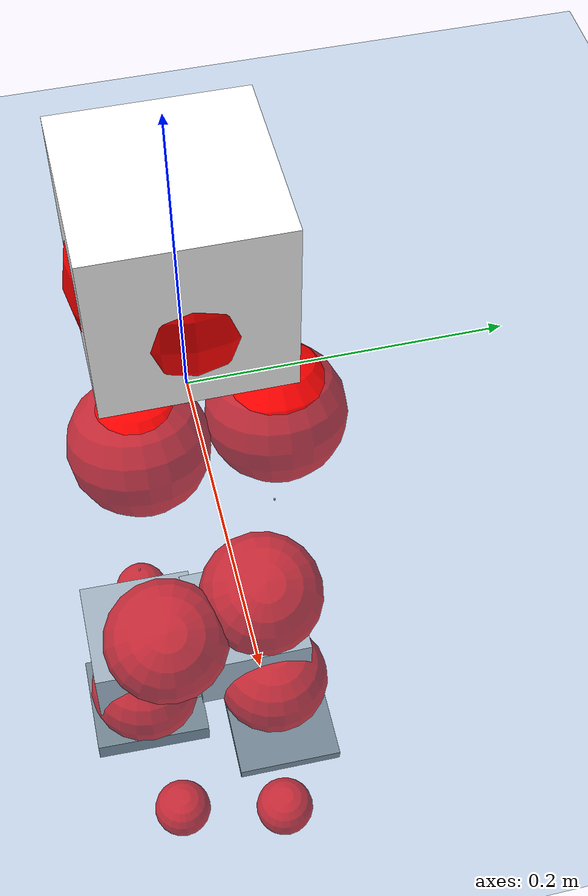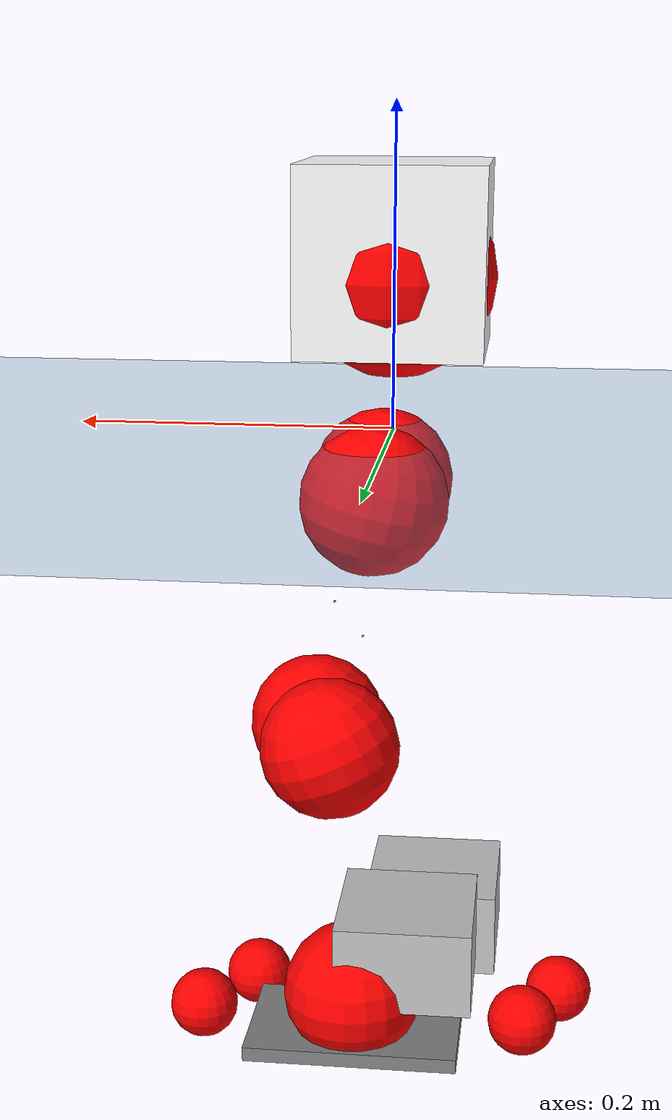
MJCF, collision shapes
<mujoco model="pi_12dof_release_v1">
  <compiler angle="radian" assetdir="assets" balanceinertia="true" inertiafromgeom="false"/>

  <option timestep="0.005" density="1.2" viscosity="2e-05"/>

  <size nkey="1"/>

  <visual>
    <quality shadowsize="8192"/>
    <map shadowclip="0.5"/>
  </visual>

  <default>
    <default class="/">
      <joint armature="0.01" damping="0.01" frictionloss="0.01"/>
      <geom contype="0" conaffinity="0" group="1" solref="-1000 -80"/>
      <site size="0.01 0.005 0.005" group="5"/>
      <general forcelimited="true" biastype="affine" gainprm="20" biasprm="0 -20 -0.5"/>
      <default class="foot">
        <geom size="0.0845 0.036 0.005" type="box" condim="6" group="4" priority="1" friction="0.9 0.2 0.2" solimp="0.015 1 0.005"/>
      </default>
      <default class="reward_collision_sphere">
        <geom group="5" rgba="1 0 0 1"/>
      </default>
    </default>
  </default>

  <asset>
    <texture type="skybox" colorspace="auto" name="//unnamed_texture_0" builtin="gradient" rgb1="0.95 0.95 0.95" rgb2="0.95 0.95 0.95" width="100" height="600"/>
    <texture type="2d" colorspace="auto" name="texplane" builtin="checker" rgb1="0.345 0.575 0.748" rgb2="0.345 0.575 0.748" markrgb="1 1 1" width="512" height="512"/>
    <material name="MatPlane" class="/" texture="texplane" texuniform="true" texrepeat="2 2" specular="0.9"/>
    <mesh name="baselink_1" class="/" file="baselink_1.STL"/>
    <mesh name="r_hip_pitch_link" class="/" file="r_hip_pitch_link.STL"/>
    <mesh name="r_hip_roll_link" class="/" file="r_hip_roll_link.STL"/>
    <mesh name="r_thigh_link" class="/" file="r_thigh_link.STL"/>
    <mesh name="r_calf_link" class="/" file="r_calf_link.STL"/>
    <mesh name="r_ankle_pitch_link" class="/" file="r_ankle_pitch_link.STL"/>
    <mesh name="r_ankle_roll_link" class="/" file="r_ankle_roll_link.STL"/>
    <mesh name="l_hip_pitch_link" class="/" file="l_hip_pitch_link.STL"/>
    <mesh name="l_hip_roll_link" class="/" file="l_hip_roll_link.STL"/>
    <mesh name="l_thigh_link" class="/" file="l_thigh_link.STL"/>
    <mesh name="l_calf_link" class="/" file="l_calf_link.STL"/>
    <mesh name="l_ankle_pitch_link" class="/" file="l_ankle_pitch_link.STL"/>
    <mesh name="l_ankle_roll_link" class="/" file="l_ankle_roll_link.STL"/>
  </asset>

  <worldbody>
    <geom name="floor" class="/" size="100 100 0.125" type="plane" group="0" material="MatPlane"/>
    <light name="toplight_shadow" class="/" pos="0 0 5" dir="0.0990148 0.0990148 -0.990148" type="directional" ambient="0.04 0.04 0.04" diffuse="0.55 0.55 0.55" specular="0.12 0.12 0.12"/>
    <light name="toplight_fill" class="/" pos="0 0 5" dir="0.0990148 0.0990148 -0.990148" type="directional" castshadow="false" ambient="0.04 0.04 0.04" diffuse="0.3 0.3 0.3" specular="0.08 0.08 0.08"/>
    <body name="trunk" pos="3.67869e-05 -0.000664472 0.0139636" quat="0.999998 -0.00140169 -0.00137339 0.000406973">
      <inertial pos="-0.00105244 -0.017851 0.0319848" quat="0.693125 0.00832402 0.0101504 0.720698" mass="3.29899" diaginertia="0.0906644 0.0011919 0.0107115"/>
      <joint name="//unnamed_joint_0" type="free"/>
      <geom name="//unnamed_geom_1" class="/" type="mesh" density="0" rgba="1 1 1 1" mesh="baselink_1"/>
      <geom name="//unnamed_geom_2" class="/" size="0.0569391 0.0569391 0.0569391" pos="0 0 0.093203" type="box" rgba="1 1 1 1"/>
      <geom name="//unnamed_geom_3" class="reward_collision_sphere" size="0.062633" pos="0 0 0.0815526"/>
      <site name="imu" class="/" pos="-0.0469399 0.0596779 -0.0488192" size="0.0113878"/>
      <camera name="track" class="/" pos="0 -1.31782 0" quat="0.707107 0.707107 0 0" mode="trackcom"/>
      <camera name="ego_camera" class="/" pos="0.11943 0 0.209707" quat="-0.5 -0.5 0.5 0.5"/>
      <body name="r_hip_pitch_link" pos="0.00426923 -0.00248855 -0.0436892" quat="0.992504 0.00163956 -0.12217 -0.00278299">
        <inertial pos="0.0176076 -0.0323209 0.0113195" quat="-0.0207639 0.683162 -0.0272569 0.729462" mass="0.667604" diaginertia="0.00121778 1.54702e-05 0.000167435"/>
        <joint name="r_hip_pitch_joint" class="/" pos="0 0 0" axis="-0.0640311 -0.99609 0.0608723" range="-1.61013 1.52002" armature="0.0182042" damping="0.0670924" frictionloss="0.0196579"/>
        <geom name="//unnamed_geom_4" class="/" type="mesh" density="0" rgba="0.75294 0.75294 0.75294 1" mesh="r_hip_pitch_link"/>
        <geom name="//unnamed_geom_5" class="/" size="0.000569391 0.000569391 0.000569391" type="box" rgba="0.75294 0.75294 0.75294 1"/>
        <body name="r_hip_roll_link" pos="0.00254284 -0.0314726 -0.0105502" quat="1 0.000228176 -0.000741778 5.04318e-06">
          <inertial pos="0.00136003 0.00304666 -0.0590582" quat="0.700205 -0.059816 -0.0832697 0.706542" mass="0.623347" diaginertia="0.00322815 3.39289e-05 0.000409972"/>
          <joint name="r_hip_roll_joint" class="/" pos="0 0 0" axis="-0.997357 0.0535493 0.0491109" stiffness="0.0512744" range="-0.114034 0.600212" armature="0.0150766" damping="0.0984803" frictionloss="0.0044599"/>
          <geom name="//unnamed_geom_6" class="/" type="mesh" density="0" rgba="0.75294 0.75294 0.75294 1" mesh="r_hip_roll_link"/>
          <geom name="//unnamed_geom_7" class="/" size="0.000569391 0.000569391 0.000569391" type="box" rgba="0.75294 0.75294 0.75294 1"/>
          <geom name="//unnamed_geom_8" class="reward_collision_sphere" size="0.0455512"/>
          <body name="r_thigh_link" pos="0.0101553 -0.0137797 -0.0953521" quat="0.999963 -0.00408999 0.0072625 -0.00225272">
            <inertial pos="0.004926 0.00118254 -0.0531463" quat="0.737307 0.675558 -4.97562e-05 -4.87982e-05" mass="0.220088" diaginertia="0.00123277 1.1975e-05 0.000137701"/>
            <joint name="r_thigh_joint" class="/" pos="0 0 0" axis="-0.0016185 -0.00175326 -0.999997" range="-0.34329 0.869755" armature="0.00261369" damping="0" frictionloss="0.00946486"/>
            <geom name="//unnamed_geom_9" class="/" type="mesh" density="0" rgba="0.75294 0.75294 0.75294 1" mesh="r_thigh_link"/>
            <geom name="//unnamed_geom_10" class="/" size="0.000569391 0.000569391 0.000569391" type="box" rgba="0.75294 0.75294 0.75294 1"/>
            <body name="r_calf_link" pos="-0.00921711 0.0106179 -0.0828231" quat="0.947775 -0.00633534 0.318848 -0.00437883">
              <inertial pos="0.00233268 -0.00708683 -0.0745068" quat="0.99985 0.00299779 -0.000373286 0.0170523" mass="1.29302" diaginertia="0.0462838 0.00059967 0.000357557"/>
              <joint name="r_calf_joint" class="/" pos="0 0 0" axis="0.0186053 -0.995412 -0.0938562" range="-1.43955 0.608592" armature="0.0112065" damping="0.0153704" frictionloss="0.0162498"/>
              <geom name="//unnamed_geom_11" class="/" type="mesh" density="0" rgba="0.75294 0.75294 0.75294 1" mesh="r_calf_link"/>
              <geom name="//unnamed_geom_12" class="/" size="0.000569391 0.000569391 0.000569391" type="box" rgba="0.75294 0.75294 0.75294 1"/>
              <geom name="//unnamed_geom_13" class="reward_collision_sphere" size="0.0455512"/>
              <body name="r_ankle_pitch_link" pos="-0.0185991 -0.0120897 -0.160564" quat="0.979735 -0.00337732 -0.200259 0.00212724">
                <inertial pos="0.00372597 0.00847171 -0.000609063" quat="-0.00235314 0.698826 0.00135812 0.715287" mass="0.226327" diaginertia="0.00292294 2.37891e-05 0.000178707"/>
                <joint name="r_ankle_pitch_joint" class="/" pos="0 0 0" axis="0.0525447 -0.998466 0.0174777" stiffness="0.0520216" range="-1.03631 0.29023" armature="0.0108946" damping="0" frictionloss="0.00233341"/>
                <geom name="//unnamed_geom_14" class="/" type="mesh" density="0" rgba="0.75294 0.75294 0.75294 1" mesh="r_ankle_pitch_link"/>
                <geom name="//unnamed_geom_15" class="/" size="0.0444125 0.0455512 0.0284695" type="box" rgba="0.75294 0.75294 0.75294 1"/>
                <body name="r_ankle_roll_link" pos="0.102263 -0.00557733 -0.0115393" quat="0.999994 -0.00198805 3.10382e-05 -0.00292506">
                  <inertial pos="-0.0280203 0.00784931 -0.0352743" quat="0.56898 0.455607 0.438879 0.525423" mass="0.9229" diaginertia="0.0094804 0.000130025 0.000616806"/>
                  <joint name="r_ankle_roll_joint" class="/" pos="0 0 0" axis="-0.999864 -0.0162704 0.00260939" range="-0.270081 0.28789" armature="0.0111394" damping="0.00280051" frictionloss="0.00065888"/>
                  <geom name="//unnamed_geom_16" class="/" type="mesh" density="0" rgba="0.75294 0.75294 0.75294 1" mesh="r_ankle_roll_link"/>
                  <geom name="//unnamed_geom_17" class="/" type="mesh" rgba="0.75294 0.75294 0.75294 1" mesh="r_ankle_roll_link"/>
                  <geom name="right_foot" class="foot" size="0.0410291 0.0469685 0.00921949" pos="-0.0812123 0 -0.0512616"/>
                  <geom name="//unnamed_geom_19" class="reward_collision_sphere" size="0.0455512" pos="-0.0796199 0 -0.0233007"/>
                  <geom name="//unnamed_geom_20" class="reward_collision_sphere" size="0.0227756" pos="0.023886 0.0131782 -0.0466015"/>
                  <geom name="//unnamed_geom_21" class="reward_collision_sphere" size="0.0227756" pos="-0.191088 0.0131782 -0.0466015"/>
                  <site name="right_foot" class="foot" pos="-0.0812123 0 -0.0512616" size="0.0113878"/>
                </body>
              </body>
            </body>
          </body>
        </body>
      </body>
      <body name="l_hip_pitch_link" pos="0.0074979 0.00115457 -0.04363" quat="0.992439 -0.000310651 -0.122723 -0.002114">
        <inertial pos="0.01266 0.0517247 -0.00706004" quat="0.0498213 0.71879 0.0680887 0.690089" mass="0.710014" diaginertia="0.00115259 1.08144e-05 0.000243135"/>
        <joint name="l_hip_pitch_joint" class="/" pos="0 0 0" axis="0.00992293 0.999917 0.00818205" stiffness="0.000628349" range="-1.5472 2.09332" armature="0.00358709" damping="0" frictionloss="0.0203127"/>
        <geom name="//unnamed_geom_22" class="/" type="mesh" density="0" rgba="0.75294 0.75294 0.75294 1" mesh="l_hip_pitch_link"/>
        <geom name="//unnamed_geom_23" class="/" size="0.000569391 0.000569391 0.000569391" type="box" rgba="0.75294 0.75294 0.75294 1"/>
        <body name="l_hip_roll_link" pos="-0.00202231 0.0534839 -0.00383976" quat="0.999983 0.00373954 0.00357007 0.00274818">
          <inertial pos="0.00600966 0.0139871 -0.0709045" quat="0.705296 -0.110661 -0.044468 0.69881" mass="0.534966" diaginertia="0.00290048 3.10314e-05 0.000185586"/>
          <joint name="l_hip_roll_joint" class="/" pos="0 0 0" axis="-0.998543 -0.0518644 0.0148715" stiffness="0.0425408" range="-0.88249 0.464254" armature="0.00608445" damping="0.01224" frictionloss="0.00825513"/>
          <geom name="//unnamed_geom_24" class="/" type="mesh" density="0" rgba="0.75294 0.75294 0.75294 1" mesh="l_hip_roll_link"/>
          <geom name="//unnamed_geom_25" class="/" size="0.000569391 0.000569391 0.000569391" type="box" rgba="0.75294 0.75294 0.75294 1"/>
          <geom name="//unnamed_geom_26" class="reward_collision_sphere" size="0.0455512"/>
          <body name="l_thigh_link" pos="-0.0145604 -0.00313873 -0.0858202" quat="0.99997 -0.00495495 0.0033437 0.0049508">
            <inertial pos="-0.0148366 0.00849523 -0.0418605" quat="0.675412 0.737439 -0.000138527 0.00188439" mass="0.151168" diaginertia="0.00107078 6.96834e-06 7.05303e-05"/>
            <joint name="l_thigh_joint" class="/" pos="0 0 0" axis="-0.00899705 -0.0397776 -0.999168" range="-0.769054 0.61305" armature="0.017951" damping="0" frictionloss="0.0193631"/>
            <geom name="//unnamed_geom_27" class="/" type="mesh" density="0" rgba="0.75294 0.75294 0.75294 1" mesh="l_thigh_link"/>
            <geom name="//unnamed_geom_28" class="/" size="0.000569391 0.000569391 0.000569391" type="box" rgba="0.75294 0.75294 0.75294 1"/>
            <body name="l_calf_link" pos="0.00270738 -0.0150001 -0.0849512" quat="0.949443 0.00254761 0.313885 -0.00518304">
              <inertial pos="-0.00711464 -0.00871093 -0.0705507" quat="0.995707 -0.0782233 0.049427 0.00238247" mass="1.54618" diaginertia="0.03528 0.00057793 0.000445326"/>
              <joint name="l_calf_joint" class="/" pos="0 0 0" axis="0.00448518 0.999865 0.0157843" range="-0.804559 1.87502" armature="0.0136119" damping="0" frictionloss="0.0188071"/>
              <geom name="//unnamed_geom_29" class="/" type="mesh" density="0" rgba="0.75294 0.75294 0.75294 1" mesh="l_calf_link"/>
              <geom name="//unnamed_geom_30" class="/" size="0.000569391 0.000569391 0.000569391" type="box" rgba="0.75294 0.75294 0.75294 1"/>
              <geom name="//unnamed_geom_31" class="reward_collision_sphere" size="0.0455512"/>
              <body name="l_ankle_pitch_link" pos="0.00616224 -0.00359551 -0.145255" quat="0.980532 -0.00165134 -0.196351 -0.000398254">
                <inertial pos="0.00809827 -0.0199112 -0.0121744" quat="0.0580019 0.674164 -0.00529129 0.736281" mass="0.331376" diaginertia="0.00413962 3.5786e-05 0.000340976"/>
                <joint name="l_ankle_pitch_joint" class="/" pos="0 0 0" axis="0.00454221 0.99616 0.0874367" stiffness="0.0122226" range="-0.473587 1.2494" armature="0.00933382" damping="0.0759445" frictionloss="0.0157909"/>
                <geom name="//unnamed_geom_32" class="/" type="mesh" density="0" rgba="0.75294 0.75294 0.75294 1" mesh="l_ankle_pitch_link"/>
                <geom name="//unnamed_geom_33" class="/" size="0.0444125 0.0455512 0.0284695" type="box" rgba="0.75294 0.75294 0.75294 1"/>
                <body name="l_ankle_roll_link" pos="0.114376 0.0149177 -0.00666857" quat="0.999975 0.00184416 0.00330521 -0.00605026">
                  <inertial pos="-0.049264 0.00339164 -0.0144908" quat="0.591207 0.411726 0.358868 0.593439" mass="1.06016" diaginertia="0.0120643 0.000162459 0.000525984"/>
                  <joint name="l_ankle_roll_joint" class="/" pos="0 0 0" axis="-0.995361 0.0717899 -0.0640533" stiffness="0.0473446" range="-0.118006 0.546157" armature="0.0109476" damping="0" frictionloss="0.0222857"/>
                  <geom name="//unnamed_geom_34" class="/" type="mesh" density="0" rgba="0.75294 0.75294 0.75294 1" mesh="l_ankle_roll_link"/>
                  <geom name="//unnamed_geom_35" class="/" type="mesh" rgba="0.75294 0.75294 0.75294 1" mesh="l_ankle_roll_link"/>
                  <geom name="left_foot" class="foot" size="0.0692766 0.0416521 0.00474443" pos="-0.0812123 0 -0.0512616"/>
                  <geom name="//unnamed_geom_37" class="reward_collision_sphere" size="0.0455512" pos="-0.0796199 0 -0.0233007"/>
                  <geom name="//unnamed_geom_38" class="reward_collision_sphere" size="0.0227756" pos="0.023886 -0.0131782 -0.0466015"/>
                  <geom name="//unnamed_geom_39" class="reward_collision_sphere" size="0.0227756" pos="-0.191088 -0.0131782 -0.0466015"/>
                  <site name="left_foot" class="foot" pos="-0.0812123 0 -0.0512616" size="0.0113878"/>
                </body>
              </body>
            </body>
          </body>
        </body>
      </body>
    </body>
  </worldbody>

  <contact>
    <pair class="/" geom1="floor" geom2="right_foot" name="//unnamed_contact_1"/>
    <pair class="/" geom1="floor" geom2="left_foot" name="//unnamed_contact_0"/>
  </contact>

  <actuator>
    <general name="r_hip_pitch_joint" class="/" joint="r_hip_pitch_joint" forcerange="-36.5136 36.5136" gainprm="28.6223" biasprm="0 -28.6223 -0.473014"/>
    <general name="r_hip_roll_joint" class="/" joint="r_hip_roll_joint" forcerange="-22.2827 22.2827" gainprm="28.6223" biasprm="0 -28.6223 -0.473014"/>
    <general name="r_thigh_joint" class="/" joint="r_thigh_joint" forcerange="-35.3723 35.3723" gainprm="28.6223" biasprm="0 -28.6223 -0.473014"/>
    <general name="r_calf_joint" class="/" joint="r_calf_joint" forcerange="-15.5442 15.5442" gainprm="28.6223" biasprm="0 -28.6223 -0.473014"/>
    <general name="r_ankle_pitch_joint" class="/" joint="r_ankle_pitch_joint" forcerange="-12.1795 12.1795" gainprm="28.6223" biasprm="0 -28.6223 -0.473014"/>
    <general name="r_ankle_roll_joint" class="/" joint="r_ankle_roll_joint" forcerange="-8.69225 8.69225" gainprm="28.6223" biasprm="0 -28.6223 -0.473014"/>
    <general name="l_hip_pitch_joint" class="/" joint="l_hip_pitch_joint" forcerange="-34.739 34.739" gainprm="28.6223" biasprm="0 -28.6223 -0.473014"/>
    <general name="l_hip_roll_joint" class="/" joint="l_hip_roll_joint" forcerange="-40.989 40.989" gainprm="28.6223" biasprm="0 -28.6223 -0.473014"/>
    <general name="l_thigh_joint" class="/" joint="l_thigh_joint" forcerange="-16.6455 16.6455" gainprm="28.6223" biasprm="0 -28.6223 -0.473014"/>
    <general name="l_calf_joint" class="/" joint="l_calf_joint" forcerange="-31.7902 31.7902" gainprm="28.6223" biasprm="0 -28.6223 -0.473014"/>
    <general name="l_ankle_pitch_joint" class="/" joint="l_ankle_pitch_joint" forcerange="-15.4273 15.4273" gainprm="28.6223" biasprm="0 -28.6223 -0.473014"/>
    <general name="l_ankle_roll_joint" class="/" joint="l_ankle_roll_joint" forcerange="-33.6834 33.6834" gainprm="28.6223" biasprm="0 -28.6223 -0.473014"/>
  </actuator>

  <sensor>
    <gyro site="imu" name="imu_angular_velocity"/>
    <velocimeter site="imu" name="imu_linear_velocity"/>
    <framelinvel objtype="site" objname="left_foot" name="left_foot_global_linear_velocity"/>
    <framelinvel objtype="site" objname="right_foot" name="right_foot_global_linear_velocity"/>
  </sensor>

  <keyframe>
    <key name="home" qpos="0 0 0.291 1 0 0 0 0.4 0 0 -0.8 0.4 0 -0.4 0 0 0.8 -0.4 0"/>
  </keyframe>
</mujoco>
